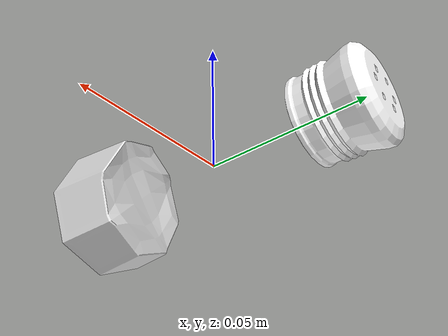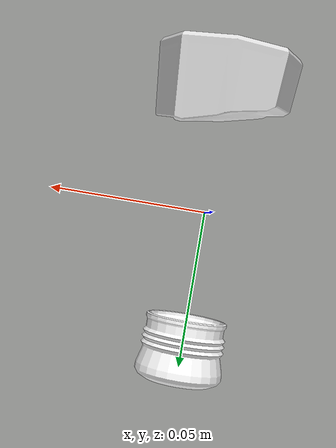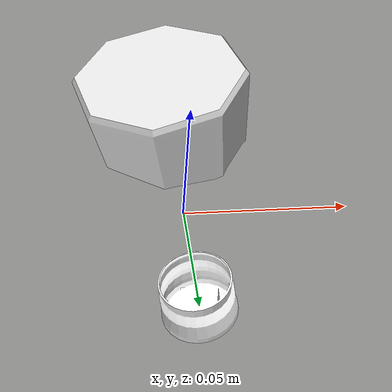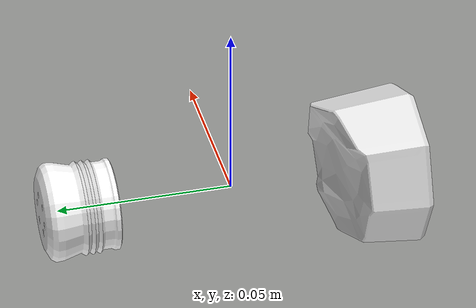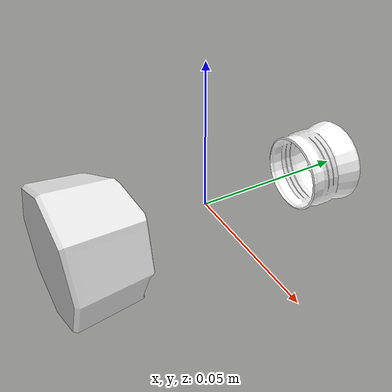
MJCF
<mujoco model="Salt_Shaker_1">
  <default>
    <default class="visual">
      <geom group="2" type="mesh" contype="0" conaffinity="0"/>
    </default>
    <default class="collision">
      <geom group="3" type="mesh"/>
    </default>
  </default>
  <asset>
    <material name="SaltNoise" specular="0.5" shininess="0.5" rgba="0.8897059 0.8897059 0.8897059 1.0"/>
    <material name="HammeredMetal_AlbedoTransparency" specular="0.5" shininess="0.5" rgba="1 1 1 1.0"/>
    <material name="Glass_Detailed_Lit_Medium_Mat" specular="0.5" shininess="0.5" rgba="1 1 1 0"/>
    <mesh file="Salt_Shaker_1_0.obj"/>
    <mesh file="Salt_Shaker_1_1.obj"/>
    <mesh file="Salt_Shaker_1_2.obj"/>
    <mesh file="Salt_Shaker_1_collision_0.obj"/>
    <mesh file="Salt_Shaker_1_collision_1.obj"/>
  </asset>
  <worldbody>
    <body name="Salt_Shaker_1">
      <geom mesh="Salt_Shaker_1_0" material="Glass_Detailed_Lit_Medium_Mat" class="visual"/>
      <geom mesh="Salt_Shaker_1_1" material="HammeredMetal_AlbedoTransparency" class="visual"/>
      <geom mesh="Salt_Shaker_1_2" material="SaltNoise" class="visual"/>
      <geom mesh="Salt_Shaker_1_collision_0" rgba="0.3067190758650886 0.04563030839578208 0.6778507859522191 1" class="collision"/>
      <geom mesh="Salt_Shaker_1_collision_1" rgba="0.13312496327956413 0.970341484680434 0.17132406135072542 1" class="collision"/>
    </body>
  </worldbody>
</mujoco>
